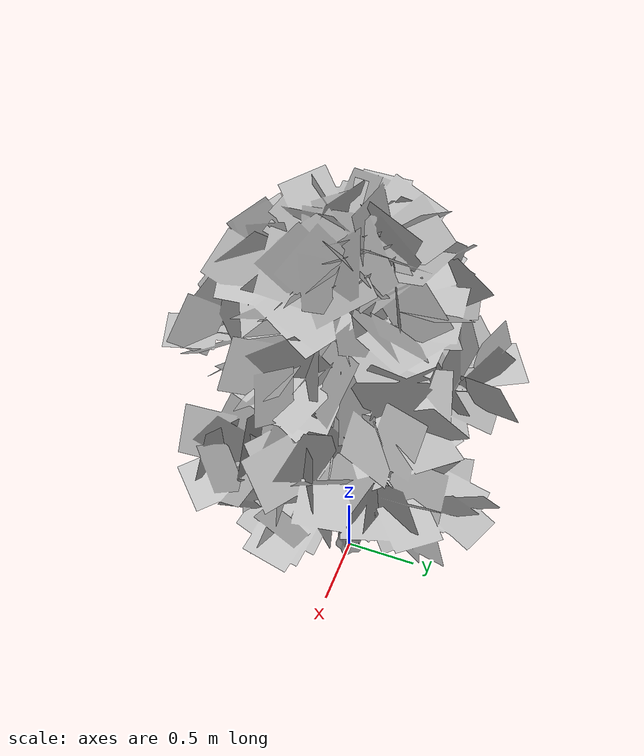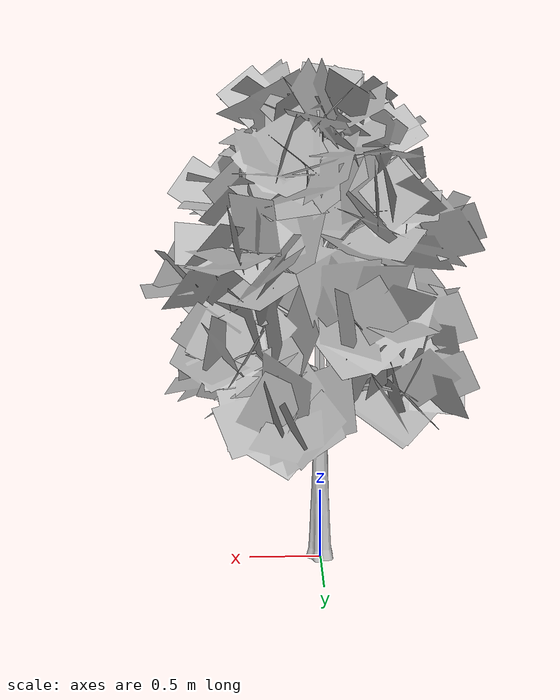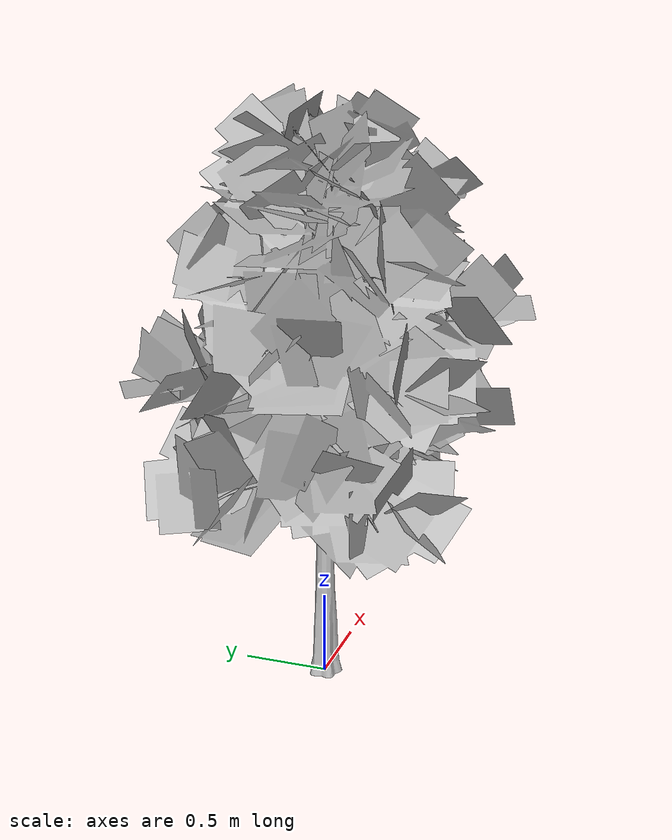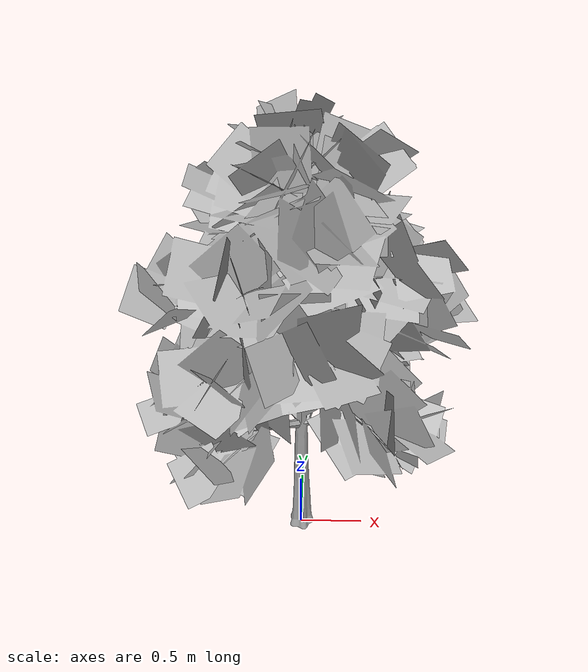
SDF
<?xml version="1.0" ?>
<sdf version="1.6">
  <model name="low_poly_tree">
    <static>true</static>
    <link name="link">
      <visual name="visual">
        <geometry>
          <mesh>
            <uri>model://low_poly_tree/Untitled.obj</uri>
            <scale>0.002402 0.002402 0.002402</scale>
          </mesh>
        </geometry>
      </visual>
                  <collision name="collision">
        <geometry>
          <mesh>
            <uri>model://low_poly_tree/Untitled.obj</uri>
            <scale>0.002402 0.002402 0.002402</scale>
          </mesh>
        </geometry>
      </collision>
    </link>
  </model>
</sdf>
